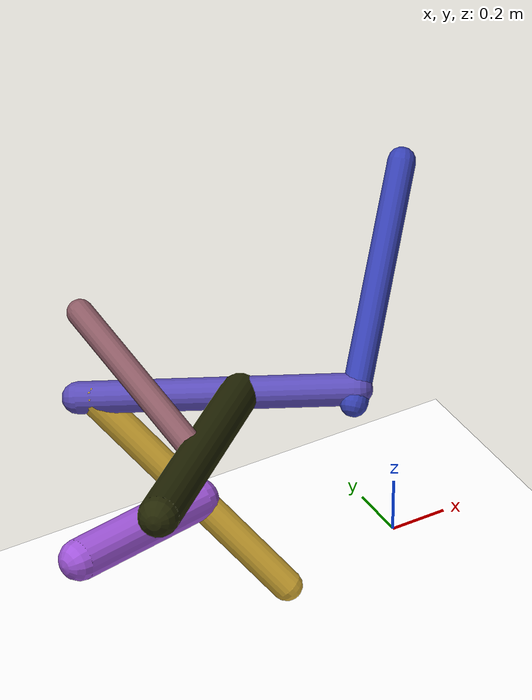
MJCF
<mujoco model="morphology">
  <option timestep="0.01"/>
  <default>
    <default class="/"/>
    <default class="0/"/>
    <default class="0/1/"/>
    <default class="0/1/2/"/>
    <default class="0/1/2/3/"/>
    <default class="0/1/4/"/>
    <default class="0/1/4/5/"/>
  </default>
  <asset>
    <texture name="texplane" type="2d" builtin="checker" rgb1="0.10000000000000001 0.20000000000000001 0.29999999999999999" rgb2="0.20000000000000001 0.29999999999999999 0.40000000000000002" width="300" height="300"/>
    <material name="MatPlane" class="/" texture="texplane" texrepeat="20 20" specular="1" shininess="1" reflectance="0.5"/>
  </asset>
  <worldbody>
    <light name="//unnamed_light_0" class="/" directional="true" pos="0 0 1.5" dir="0 0 -1.3" cutoff="100" exponent="1" diffuse="1 1 1" specular="0.10000000000000001 0.10000000000000001 0.10000000000000001"/>
    <geom name="ground" class="/" type="plane" size="15 15 0.5" material="MatPlane" rgba="1 1 1 1"/>
    <site name="body" class="/" size="9.9999999999999995e-07 9.9999999999999995e-07 9.9999999999999995e-07" pos="0 0 1.4767758607864381"/>
    <body pos="0 0 1.4767758607864381" name="0/">
      <freejoint name="0/"/>
      <geom name="0/geom" class="0/" type="capsule" contype="1" conaffinity="1" condim="3" size="0.045754174084655437" rgba="0.2167628434225578 0.25774275525373502 0.70994039981947543 1" friction="0.59999999999999998 0.10000000000000001 0.10000000000000001" fromto="0 0 0 -0.40382255820167612 -0.38490548438161509 -0.56335470511242425"/>
      <site name="0/end0" class="0/" size="0.0050000000000000001" pos="-0.40382255820167612 -0.38490548438161509 -0.56335470511242425"/>
      <site name="0/attach1" class="0/" size="9.9999999999999995e-07 9.9999999999999995e-07 9.9999999999999995e-07" pos="-0.38095537727209799 -0.36310951688703652 -0.53145372853820005"/>
      <body pos="-0.38095537727209799 -0.36310951688703652 -0.53145372853820005" name="0/1/">
        <joint name="0/1/joint/" class="0/" type="hinge" axis="0 1 0" limited="true" range="-35.187781550302006 35.187781550302006"/>
        <geom name="0/1/geom" class="0/1/" type="capsule" contype="1" conaffinity="1" condim="3" size="0.052602176204182574" rgba="0.35348968677809778 0.29878206004848795 0.72074020444463605 1" friction="0.59999999999999998 0.10000000000000001 0.10000000000000001" fromto="0 0 0 -0.70667011177143269 0.54979232846126469 -0.12011783679546939"/>
        <site name="0/1/end1" class="0/1/" size="0.0050000000000000001" pos="-0.70667011177143269 0.54979232846126469 -0.12011783679546939"/>
        <site name="0/1/attach2" class="0/1/" size="9.9999999999999995e-07 9.9999999999999995e-07 9.9999999999999995e-07" pos="-0.29422974587515399 0.22891198367193558 -0.050012360798464571"/>
        <body pos="-0.29422974587515399 0.22891198367193558 -0.050012360798464571" name="0/1/2/">
          <joint name="0/1/2/joint/" class="0/1/" type="hinge" axis="-0.6229553469255239 -0.76423054513454947 0.16696798980717675" limited="true" range="-53.693098651969677 53.693098651969677"/>
          <geom name="0/1/2/geom" class="0/1/2/" type="capsule" contype="1" conaffinity="1" condim="3" size="0.063867502377875862" rgba="0.14328532857821197 0.15566066468628703 0.021362971932857966 1" friction="0.59999999999999998 0.10000000000000001 0.10000000000000001" fromto="0 0 0 -0.70417331247271209 -0.73369850956503868 0.26207834867203017"/>
          <site name="0/1/2/end2" class="0/1/2/" size="0.0050000000000000001" pos="-0.70417331247271209 -0.73369850956503868 0.26207834867203017"/>
          <site name="0/1/2/attach3" class="0/1/2/" size="9.9999999999999995e-07 9.9999999999999995e-07 9.9999999999999995e-07" pos="-0.37163525003122355 -0.38721749918675819 0.1383147456902159"/>
          <body pos="-0.37163525003122355 -0.38721749918675819 0.1383147456902159" name="0/1/2/3/">
            <joint name="0/1/2/3/joint/" class="0/1/2/" type="hinge" axis="2.7755575615628914e-17 0.33638553467418791 0.94172436097934775" limited="true" range="-62.739944578509885 62.739944578509885"/>
            <geom name="0/1/2/3/geom" class="0/1/2/3/" type="capsule" contype="1" conaffinity="1" condim="3" size="0.043270476114878526" rgba="0.54752163949102894 0.35467587794984545 0.39325494924132764 1" friction="0.59999999999999998 0.10000000000000001 0.10000000000000001" fromto="0 0 0 -0.072363833220525087 0.61756364987531964 0.18939987528073121"/>
            <site name="0/1/2/3/end3" class="0/1/2/3/" size="0.0050000000000000001" pos="-0.072363833220525087 0.61756364987531964 0.18939987528073121"/>
          </body>
        </body>
        <site name="0/1/attach4" class="0/1/" size="9.9999999999999995e-07 9.9999999999999995e-07 9.9999999999999995e-07" pos="-0.66866335164992985 0.52022290873288601 -0.1136575525222952"/>
        <body pos="-0.66866335164992985 0.52022290873288601 -0.1136575525222952" name="0/1/4/">
          <joint name="0/1/4/joint/" class="0/1/" type="hinge" axis="0 0.21344379787135104 0.97695534450160715" limited="true" range="-67.388938364994601 67.388938364994601"/>
          <geom name="0/1/4/geom" class="0/1/4/" type="capsule" contype="1" conaffinity="1" condim="3" size="0.052792261831133905" rgba="0.89351463438385026 0.71777587859423175 0.22075225728205161 1" friction="0.59999999999999998 0.10000000000000001 0.10000000000000001" fromto="0 0 0 0.51732085534937 -0.35024229637389154 -0.7316645980750428"/>
          <site name="0/1/4/end4" class="0/1/4/" size="0.0050000000000000001" pos="0.51732085534937 -0.35024229637389154 -0.7316645980750428"/>
          <site name="0/1/4/attach5" class="0/1/4/" size="9.9999999999999995e-07 9.9999999999999995e-07 9.9999999999999995e-07" pos="0.27709959859727434 -0.1876050399542647 -0.39191144980518583"/>
          <body pos="0.27709959859727434 -0.1876050399542647 -0.39191144980518583" name="0/1/4/5/">
            <joint name="0/1/4/5/joint/" class="0/1/4/" type="hinge" axis="0.84313407354540604 0.23216540750200271 0.484999131531345" limited="true" range="-51.448627429940522 51.448627429940522"/>
            <geom name="0/1/4/5/geom" class="0/1/4/5/" type="capsule" contype="1" conaffinity="1" condim="3" size="0.069005569012750956" rgba="0.62819548696228167 0.3362215837062591 0.85600562259846602 1" friction="0.59999999999999998 0.10000000000000001 0.10000000000000001" fromto="0 0 0 -0.4950441778973243 -0.10557124590454414 0.016611760884073679"/>
            <site name="0/1/4/5/end5" class="0/1/4/5/" size="0.0050000000000000001" pos="-0.4950441778973243 -0.10557124590454414 0.016611760884073679"/>
          </body>
        </body>
      </body>
      <camera name="0/iso" class="0/" mode="trackcom" pos="-2.2999999999999998 -2.2999999999999998 1" xyaxes="0.45000000000000001 -0.45000000000000001 0 0.29999999999999999 0.14999999999999999 0.93999999999999995"/>
    </body>
  </worldbody>
  <actuator>
    <motor name="0/1/motor" class="0/1/" ctrllimited="true" ctrlrange="-1 1" gear="83" joint="0/1/joint/"/>
    <motor name="0/1/2/motor" class="0/1/2/" ctrllimited="true" ctrlrange="-1 1" gear="81" joint="0/1/2/joint/"/>
    <motor name="0/1/2/3/motor" class="0/1/2/3/" ctrllimited="true" ctrlrange="-1 1" gear="67" joint="0/1/2/3/joint/"/>
    <motor name="0/1/4/motor" class="0/1/4/" ctrllimited="true" ctrlrange="-1 1" gear="50" joint="0/1/4/joint/"/>
    <motor name="0/1/4/5/motor" class="0/1/4/5/" ctrllimited="true" ctrlrange="-1 1" gear="53" joint="0/1/4/5/joint/"/>
  </actuator>
  <sensor>
    <subtreelinvel name="velocity" body="0/"/>
  </sensor>
</mujoco>
